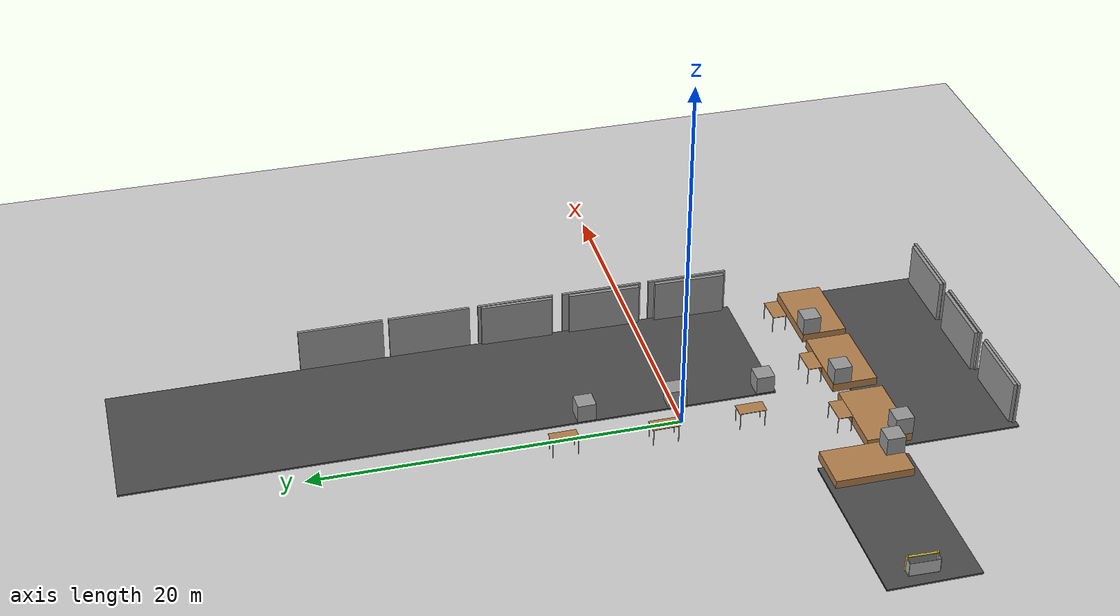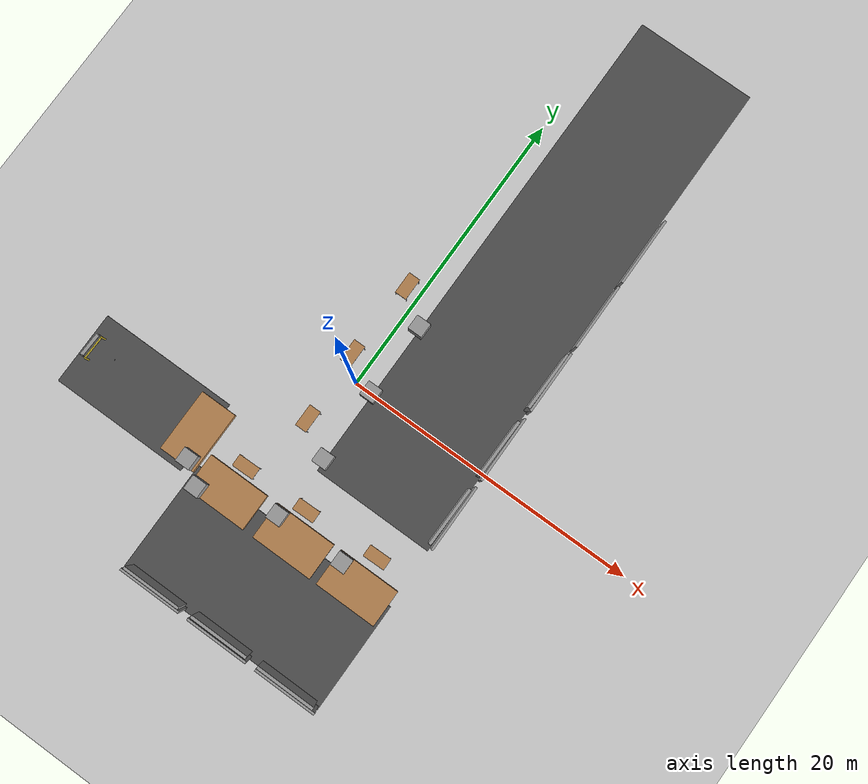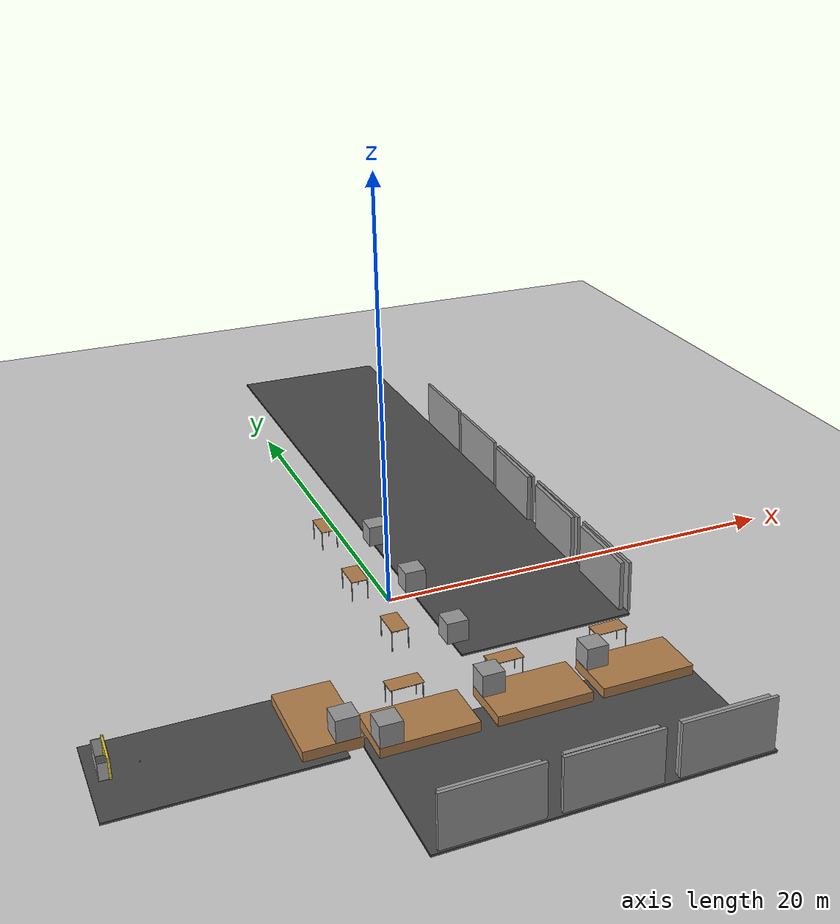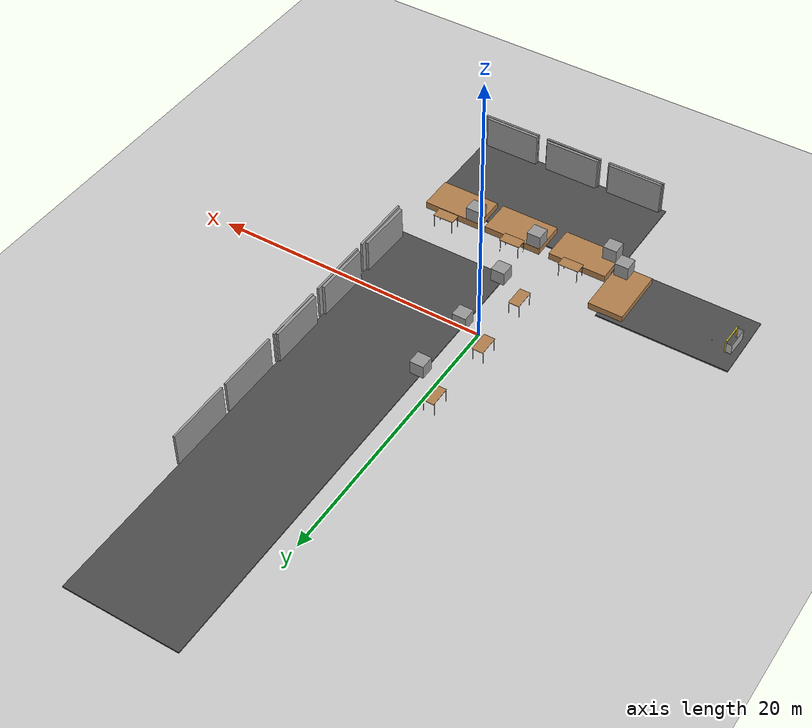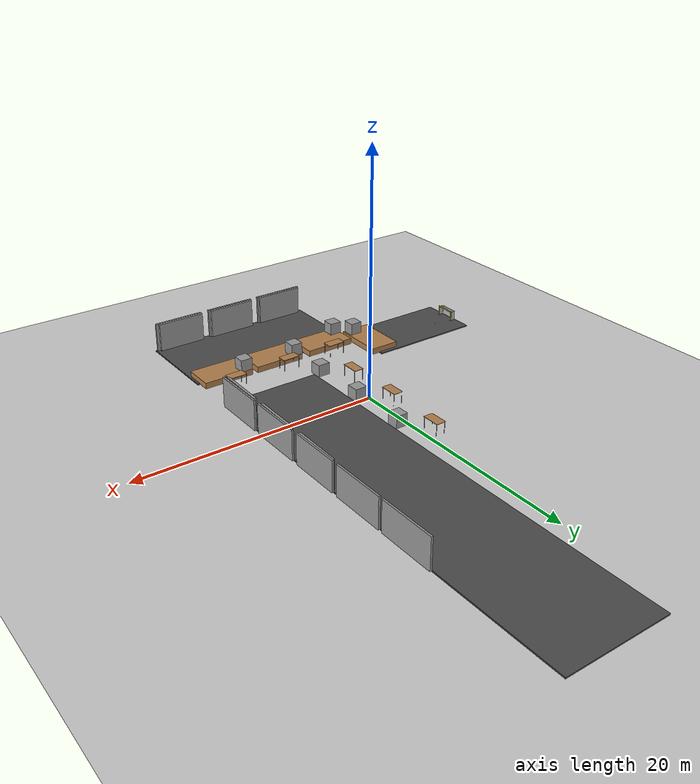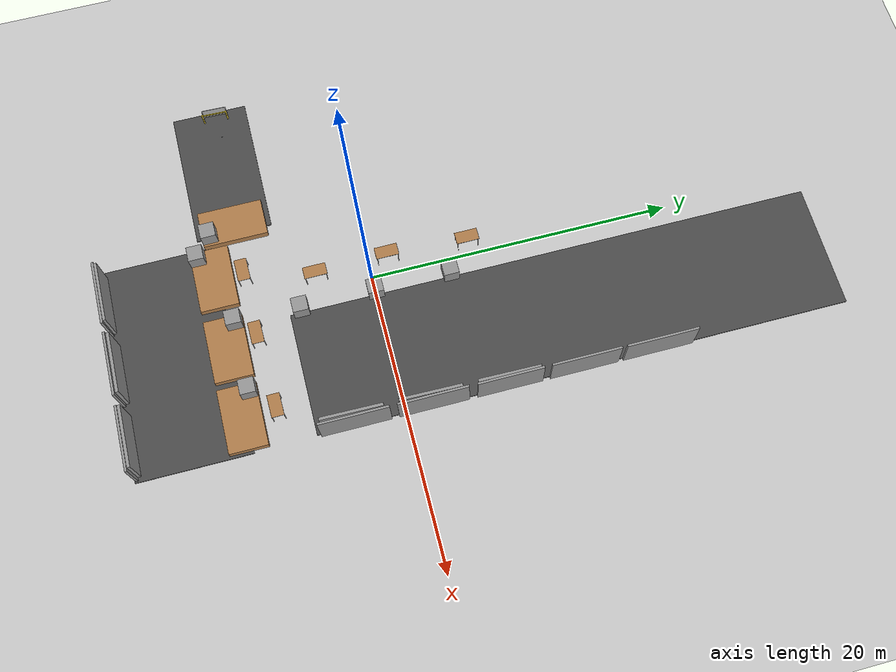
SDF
<sdf version="1.6">
 <world name="default">
  <model name="ground_plane">
   <static>1</static>
   <link name="link">
    <collision name="collision">
     <geometry><plane><normal>0 0 1</normal><size>100 100</size></plane></geometry>
     <surface>
      <contact><collide_bitmask>65535</collide_bitmask></contact>
      <friction><ode><mu>100</mu><mu2>50</mu2></ode></friction>
     </surface>
    </collision>
    <visual name="visual">
     <cast_shadows>0</cast_shadows>
     <geometry><plane><normal>0 0 1</normal><size>100 100</size></plane></geometry>
     <material>
      <script><uri>file://media/materials/scripts/gazebo.material</uri><name>Gazebo/Grey</name></script>
     </material>
    </visual>
   </link>
   <pose>-3.51447 11.9136 0 0 -0 0</pose>
  </model>
  <model name="table_clone">
   <static>1</static>
   <link name="link">
    <collision name="surface">
     <pose>0 0 1 0 -0 0</pose>
     <geometry><box><size>1.5 0.8 0.03</size></box></geometry>
     <surface><friction><ode><mu>0.6</mu><mu2>0.6</mu2></ode></friction></surface>
    </collision>
    <visual name="visual1">
     <pose>0 0 1 0 -0 0</pose>
     <geometry><box><size>1.5 0.8 0.03</size></box></geometry>
     <material>
      <script><uri>file://media/materials/scripts/gazebo.material</uri><name>Gazebo/Wood</name></script>
     </material>
    </visual>
    <collision name="front_left_leg">
     <pose>0.68 0.38 0.5 0 -0 0</pose>
     <geometry><cylinder><radius>0.02</radius><length>1</length></cylinder></geometry>
    </collision>
    <visual name="front_left_leg">
     <pose>0.68 0.38 0.5 0 -0 0</pose>
     <geometry><cylinder><radius>0.02</radius><length>1</length></cylinder></geometry>
     <material>
      <script><uri>file://media/materials/scripts/gazebo.material</uri><name>Gazebo/Grey</name></script>
     </material>
    </visual>
    <collision name="front_right_leg">
     <pose>0.68 -0.38 0.5 0 -0 0</pose>
     <geometry><cylinder><radius>0.02</radius><length>1</length></cylinder></geometry>
    </collision>
    <visual name="front_right_leg">
     <pose>0.68 -0.38 0.5 0 -0 0</pose>
     <geometry><cylinder><radius>0.02</radius><length>1</length></cylinder></geometry>
     <material>
      <script><uri>file://media/materials/scripts/gazebo.material</uri><name>Gazebo/Grey</name></script>
     </material>
    </visual>
    <collision name="back_right_leg">
     <pose>-0.68 -0.38 0.5 0 -0 0</pose>
     <geometry><cylinder><radius>0.02</radius><length>1</length></cylinder></geometry>
    </collision>
    <visual name="back_right_leg">
     <pose>-0.68 -0.38 0.5 0 -0 0</pose>
     <geometry><cylinder><radius>0.02</radius><length>1</length></cylinder></geometry>
     <material>
      <script><uri>file://media/materials/scripts/gazebo.material</uri><name>Gazebo/Grey</name></script>
     </material>
    </visual>
    <collision name="back_left_leg">
     <pose>-0.68 0.38 0.5 0 -0 0</pose>
     <geometry><cylinder><radius>0.02</radius><length>1</length></cylinder></geometry>
    </collision>
    <visual name="back_left_leg">
     <pose>-0.68 0.38 0.5 0 -0 0</pose>
     <geometry><cylinder><radius>0.02</radius><length>1</length></cylinder></geometry>
     <material>
      <script><uri>file://media/materials/scripts/gazebo.material</uri><name>Gazebo/Grey</name></script>
     </material>
    </visual>
   </link>
   <pose>-1.16496 1.3236 0 0 0 -1.56764</pose>
  </model>
  <model name="table_clone_clone">
   <static>1</static>
   <link name="link">
    <collision name="surface">
     <pose>0 0 1 0 -0 0</pose>
     <geometry><box><size>1.5 0.8 0.03</size></box></geometry>
     <surface><friction><ode><mu>0.6</mu><mu2>0.6</mu2></ode></friction></surface>
    </collision>
    <visual name="visual1">
     <pose>0 0 1 0 -0 0</pose>
     <geometry><box><size>1.5 0.8 0.03</size></box></geometry>
     <material>
      <script><uri>file://media/materials/scripts/gazebo.material</uri><name>Gazebo/Wood</name></script>
     </material>
    </visual>
    <collision name="front_left_leg">
     <pose>0.68 0.38 0.5 0 -0 0</pose>
     <geometry><cylinder><radius>0.02</radius><length>1</length></cylinder></geometry>
    </collision>
    <visual name="front_left_leg">
     <pose>0.68 0.38 0.5 0 -0 0</pose>
     <geometry><cylinder><radius>0.02</radius><length>1</length></cylinder></geometry>
     <material>
      <script><uri>file://media/materials/scripts/gazebo.material</uri><name>Gazebo/Grey</name></script>
     </material>
    </visual>
    <collision name="front_right_leg">
     <pose>0.68 -0.38 0.5 0 -0 0</pose>
     <geometry><cylinder><radius>0.02</radius><length>1</length></cylinder></geometry>
    </collision>
    <visual name="front_right_leg">
     <pose>0.68 -0.38 0.5 0 -0 0</pose>
     <geometry><cylinder><radius>0.02</radius><length>1</length></cylinder></geometry>
     <material>
      <script><uri>file://media/materials/scripts/gazebo.material</uri><name>Gazebo/Grey</name></script>
     </material>
    </visual>
    <collision name="back_right_leg">
     <pose>-0.68 -0.38 0.5 0 -0 0</pose>
     <geometry><cylinder><radius>0.02</radius><length>1</length></cylinder></geometry>
    </collision>
    <visual name="back_right_leg">
     <pose>-0.68 -0.38 0.5 0 -0 0</pose>
     <geometry><cylinder><radius>0.02</radius><length>1</length></cylinder></geometry>
     <material>
      <script><uri>file://media/materials/scripts/gazebo.material</uri><name>Gazebo/Grey</name></script>
     </material>
    </visual>
    <collision name="back_left_leg">
     <pose>-0.68 0.38 0.5 0 -0 0</pose>
     <geometry><cylinder><radius>0.02</radius><length>1</length></cylinder></geometry>
    </collision>
    <visual name="back_left_leg">
     <pose>-0.68 0.38 0.5 0 -0 0</pose>
     <geometry><cylinder><radius>0.02</radius><length>1</length></cylinder></geometry>
     <material>
      <script><uri>file://media/materials/scripts/gazebo.material</uri><name>Gazebo/Grey</name></script>
     </material>
    </visual>
   </link>
   <pose>-0.995575 -3.46829 0 0 0 -1.56764</pose>
  </model>
  <model name="table_clone_clone_0">
   <static>1</static>
   <link name="link">
    <collision name="surface">
     <pose>0 0 1 0 -0 0</pose>
     <geometry><box><size>1.5 0.8 0.03</size></box></geometry>
     <surface><friction><ode><mu>0.6</mu><mu2>0.6</mu2></ode></friction></surface>
    </collision>
    <visual name="visual1">
     <pose>0 0 1 0 -0 0</pose>
     <geometry><box><size>1.5 0.8 0.03</size></box></geometry>
     <material>
      <script><uri>file://media/materials/scripts/gazebo.material</uri><name>Gazebo/Wood</name></script>
     </material>
    </visual>
    <collision name="front_left_leg">
     <pose>0.68 0.38 0.5 0 -0 0</pose>
     <geometry><cylinder><radius>0.02</radius><length>1</length></cylinder></geometry>
    </collision>
    <visual name="front_left_leg">
     <pose>0.68 0.38 0.5 0 -0 0</pose>
     <geometry><cylinder><radius>0.02</radius><length>1</length></cylinder></geometry>
     <material>
      <script><uri>file://media/materials/scripts/gazebo.material</uri><name>Gazebo/Grey</name></script>
     </material>
    </visual>
    <collision name="front_right_leg">
     <pose>0.68 -0.38 0.5 0 -0 0</pose>
     <geometry><cylinder><radius>0.02</radius><length>1</length></cylinder></geometry>
    </collision>
    <visual name="front_right_leg">
     <pose>0.68 -0.38 0.5 0 -0 0</pose>
     <geometry><cylinder><radius>0.02</radius><length>1</length></cylinder></geometry>
     <material>
      <script><uri>file://media/materials/scripts/gazebo.material</uri><name>Gazebo/Grey</name></script>
     </material>
    </visual>
    <collision name="back_right_leg">
     <pose>-0.68 -0.38 0.5 0 -0 0</pose>
     <geometry><cylinder><radius>0.02</radius><length>1</length></cylinder></geometry>
    </collision>
    <visual name="back_right_leg">
     <pose>-0.68 -0.38 0.5 0 -0 0</pose>
     <geometry><cylinder><radius>0.02</radius><length>1</length></cylinder></geometry>
     <material>
      <script><uri>file://media/materials/scripts/gazebo.material</uri><name>Gazebo/Grey</name></script>
     </material>
    </visual>
    <collision name="back_left_leg">
     <pose>-0.68 0.38 0.5 0 -0 0</pose>
     <geometry><cylinder><radius>0.02</radius><length>1</length></cylinder></geometry>
    </collision>
    <visual name="back_left_leg">
     <pose>-0.68 0.38 0.5 0 -0 0</pose>
     <geometry><cylinder><radius>0.02</radius><length>1</length></cylinder></geometry>
     <material>
      <script><uri>file://media/materials/scripts/gazebo.material</uri><name>Gazebo/Grey</name></script>
     </material>
    </visual>
   </link>
   <pose>-0.876309 6.63945 0 0 0 -1.56764</pose>
  </model>
  <model name="table_clone_clone_5">
   <static>1</static>
   <link name="link">
    <collision name="surface">
     <pose>0 0 1 0 -0 0</pose>
     <geometry><box><size>1.5 0.8 0.03</size></box></geometry>
     <surface><friction><ode><mu>0.6</mu><mu2>0.6</mu2></ode></friction></surface>
    </collision>
    <visual name="visual1">
     <pose>0 0 1 0 -0 0</pose>
     <geometry><box><size>1.5 0.8 0.03</size></box></geometry>
     <material>
      <script><uri>file://media/materials/scripts/gazebo.material</uri><name>Gazebo/Wood</name></script>
     </material>
    </visual>
    <collision name="front_left_leg">
     <pose>0.68 0.38 0.5 0 -0 0</pose>
     <geometry><cylinder><radius>0.02</radius><length>1</length></cylinder></geometry>
    </collision>
    <visual name="front_left_leg">
     <pose>0.68 0.38 0.5 0 -0 0</pose>
     <geometry><cylinder><radius>0.02</radius><length>1</length></cylinder></geometry>
     <material>
      <script><uri>file://media/materials/scripts/gazebo.material</uri><name>Gazebo/Grey</name></script>
     </material>
    </visual>
    <collision name="front_right_leg">
     <pose>0.68 -0.38 0.5 0 -0 0</pose>
     <geometry><cylinder><radius>0.02</radius><length>1</length></cylinder></geometry>
    </collision>
    <visual name="front_right_leg">
     <pose>0.68 -0.38 0.5 0 -0 0</pose>
     <geometry><cylinder><radius>0.02</radius><length>1</length></cylinder></geometry>
     <material>
      <script><uri>file://media/materials/scripts/gazebo.material</uri><name>Gazebo/Grey</name></script>
     </material>
    </visual>
    <collision name="back_right_leg">
     <pose>-0.68 -0.38 0.5 0 -0 0</pose>
     <geometry><cylinder><radius>0.02</radius><length>1</length></cylinder></geometry>
    </collision>
    <visual name="back_right_leg">
     <pose>-0.68 -0.38 0.5 0 -0 0</pose>
     <geometry><cylinder><radius>0.02</radius><length>1</length></cylinder></geometry>
     <material>
      <script><uri>file://media/materials/scripts/gazebo.material</uri><name>Gazebo/Grey</name></script>
     </material>
    </visual>
    <collision name="back_left_leg">
     <pose>-0.68 0.38 0.5 0 -0 0</pose>
     <geometry><cylinder><radius>0.02</radius><length>1</length></cylinder></geometry>
    </collision>
    <visual name="back_left_leg">
     <pose>-0.68 0.38 0.5 0 -0 0</pose>
     <geometry><cylinder><radius>0.02</radius><length>1</length></cylinder></geometry>
     <material>
      <script><uri>file://media/materials/scripts/gazebo.material</uri><name>Gazebo/Grey</name></script>
     </material>
    </visual>
   </link>
   <pose>7.26268 -7.72077 0 0 -0 0.016845</pose>
  </model>
  <model name="table_clone_clone_5_clone">
   <static>1</static>
   <link name="link">
    <collision name="surface">
     <pose>0 0 1 0 -0 0</pose>
     <geometry><box><size>1.5 0.8 0.03</size></box></geometry>
     <surface><friction><ode><mu>0.6</mu><mu2>0.6</mu2></ode></friction></surface>
    </collision>
    <visual name="visual1">
     <pose>0 0 1 0 -0 0</pose>
     <geometry><box><size>1.5 0.8 0.03</size></box></geometry>
     <material>
      <script><uri>file://media/materials/scripts/gazebo.material</uri><name>Gazebo/Wood</name></script>
     </material>
    </visual>
    <collision name="front_left_leg">
     <pose>0.68 0.38 0.5 0 -0 0</pose>
     <geometry><cylinder><radius>0.02</radius><length>1</length></cylinder></geometry>
    </collision>
    <visual name="front_left_leg">
     <pose>0.68 0.38 0.5 0 -0 0</pose>
     <geometry><cylinder><radius>0.02</radius><length>1</length></cylinder></geometry>
     <material>
      <script><uri>file://media/materials/scripts/gazebo.material</uri><name>Gazebo/Grey</name></script>
     </material>
    </visual>
    <collision name="front_right_leg">
     <pose>0.68 -0.38 0.5 0 -0 0</pose>
     <geometry><cylinder><radius>0.02</radius><length>1</length></cylinder></geometry>
    </collision>
    <visual name="front_right_leg">
     <pose>0.68 -0.38 0.5 0 -0 0</pose>
     <geometry><cylinder><radius>0.02</radius><length>1</length></cylinder></geometry>
     <material>
      <script><uri>file://media/materials/scripts/gazebo.material</uri><name>Gazebo/Grey</name></script>
     </material>
    </visual>
    <collision name="back_right_leg">
     <pose>-0.68 -0.38 0.5 0 -0 0</pose>
     <geometry><cylinder><radius>0.02</radius><length>1</length></cylinder></geometry>
    </collision>
    <visual name="back_right_leg">
     <pose>-0.68 -0.38 0.5 0 -0 0</pose>
     <geometry><cylinder><radius>0.02</radius><length>1</length></cylinder></geometry>
     <material>
      <script><uri>file://media/materials/scripts/gazebo.material</uri><name>Gazebo/Grey</name></script>
     </material>
    </visual>
    <collision name="back_left_leg">
     <pose>-0.68 0.38 0.5 0 -0 0</pose>
     <geometry><cylinder><radius>0.02</radius><length>1</length></cylinder></geometry>
    </collision>
    <visual name="back_left_leg">
     <pose>-0.68 0.38 0.5 0 -0 0</pose>
     <geometry><cylinder><radius>0.02</radius><length>1</length></cylinder></geometry>
     <material>
      <script><uri>file://media/materials/scripts/gazebo.material</uri><name>Gazebo/Grey</name></script>
     </material>
    </visual>
   </link>
   <pose>2.20011 -7.95706 0 0 -0 0.016845</pose>
  </model>
  <model name="table_clone_clone_5_clone_0">
   <static>1</static>
   <link name="link">
    <collision name="surface">
     <pose>0 0 1 0 -0 0</pose>
     <geometry><box><size>1.5 0.8 0.03</size></box></geometry>
     <surface><friction><ode><mu>0.6</mu><mu2>0.6</mu2></ode></friction></surface>
    </collision>
    <visual name="visual1">
     <pose>0 0 1 0 -0 0</pose>
     <geometry><box><size>1.5 0.8 0.03</size></box></geometry>
     <material>
      <script><uri>file://media/materials/scripts/gazebo.material</uri><name>Gazebo/Wood</name></script>
     </material>
    </visual>
    <collision name="front_left_leg">
     <pose>0.68 0.38 0.5 0 -0 0</pose>
     <geometry><cylinder><radius>0.02</radius><length>1</length></cylinder></geometry>
    </collision>
    <visual name="front_left_leg">
     <pose>0.68 0.38 0.5 0 -0 0</pose>
     <geometry><cylinder><radius>0.02</radius><length>1</length></cylinder></geometry>
     <material>
      <script><uri>file://media/materials/scripts/gazebo.material</uri><name>Gazebo/Grey</name></script>
     </material>
    </visual>
    <collision name="front_right_leg">
     <pose>0.68 -0.38 0.5 0 -0 0</pose>
     <geometry><cylinder><radius>0.02</radius><length>1</length></cylinder></geometry>
    </collision>
    <visual name="front_right_leg">
     <pose>0.68 -0.38 0.5 0 -0 0</pose>
     <geometry><cylinder><radius>0.02</radius><length>1</length></cylinder></geometry>
     <material>
      <script><uri>file://media/materials/scripts/gazebo.material</uri><name>Gazebo/Grey</name></script>
     </material>
    </visual>
    <collision name="back_right_leg">
     <pose>-0.68 -0.38 0.5 0 -0 0</pose>
     <geometry><cylinder><radius>0.02</radius><length>1</length></cylinder></geometry>
    </collision>
    <visual name="back_right_leg">
     <pose>-0.68 -0.38 0.5 0 -0 0</pose>
     <geometry><cylinder><radius>0.02</radius><length>1</length></cylinder></geometry>
     <material>
      <script><uri>file://media/materials/scripts/gazebo.material</uri><name>Gazebo/Grey</name></script>
     </material>
    </visual>
    <collision name="back_left_leg">
     <pose>-0.68 0.38 0.5 0 -0 0</pose>
     <geometry><cylinder><radius>0.02</radius><length>1</length></cylinder></geometry>
    </collision>
    <visual name="back_left_leg">
     <pose>-0.68 0.38 0.5 0 -0 0</pose>
     <geometry><cylinder><radius>0.02</radius><length>1</length></cylinder></geometry>
     <material>
      <script><uri>file://media/materials/scripts/gazebo.material</uri><name>Gazebo/Grey</name></script>
     </material>
    </visual>
   </link>
   <pose>-2.27876 -7.99089 0 0 -0 0.016845</pose>
  </model>
  <model name="L_wall_wood">
   <pose>1.10853 -8.53397 0 0 -0 0</pose>
   <link name="Wall_14">
    <collision name="Wall_14_Collision">
     <geometry><box><size>4.25 2.5 0.5</size></box></geometry>
     <pose>0 0 0.25 0 -0 0</pose>
    </collision>
    <visual name="Wall_14_Visual">
     <pose>0 0 0.25 0 -0 0</pose>
     <geometry><box><size>4.25 2.5 0.5</size></box></geometry>
     <material>
      <script><uri>file://media/materials/scripts/gazebo.material</uri><name>Gazebo/Wood</name></script>
      <ambient>1 1 1 1</ambient>
     </material>
     <meta><layer>0</layer></meta>
    </visual>
    <pose>6.238 -1.377 0 0 -0 0</pose>
   </link>
   <link name="Wall_16">
    <collision name="Wall_16_Collision">
     <geometry><box><size>4.25 2.5 0.5</size></box></geometry>
     <pose>0 0 0.25 0 -0 0</pose>
    </collision>
    <visual name="Wall_16_Visual">
     <pose>0 0 0.25 0 -0 0</pose>
     <geometry><box><size>4.25 2.5 0.5</size></box></geometry>
     <material>
      <script><uri>file://media/materials/scripts/gazebo.material</uri><name>Gazebo/Wood</name></script>
      <ambient>1 1 1 1</ambient>
     </material>
     <meta><layer>0</layer></meta>
    </visual>
    <pose>1.505 -1.377 0 0 -0 3.14159</pose>
   </link>
   <link name="Wall_18">
    <collision name="Wall_18_Collision">
     <geometry><box><size>4.25 2.5 0.5</size></box></geometry>
     <pose>0 0 0.25 0 -0 0</pose>
    </collision>
    <visual name="Wall_18_Visual">
     <pose>0 0 0.25 0 -0 0</pose>
     <geometry><box><size>4.25 2.5 0.5</size></box></geometry>
     <material>
      <script><uri>file://media/materials/scripts/gazebo.material</uri><name>Gazebo/Wood</name></script>
      <ambient>1 1 1 1</ambient>
     </material>
     <meta><layer>0</layer></meta>
    </visual>
    <pose>-3.485 -1.377 0 0 -0 3.14159</pose>
   </link>
   <link name="Wall_20">
    <collision name="Wall_20_Collision">
     <geometry><box><size>4.25 2.5 0.5</size></box></geometry>
     <pose>0 0 0.25 0 -0 0</pose>
    </collision>
    <visual name="Wall_20_Visual">
     <pose>0 0 0.25 0 -0 0</pose>
     <geometry><box><size>4.25 2.5 0.5</size></box></geometry>
     <material>
      <script><uri>file://media/materials/scripts/gazebo.material</uri><name>Gazebo/Wood</name></script>
      <ambient>1 1 1 1</ambient>
     </material>
     <meta><layer>0</layer></meta>
    </visual>
    <pose>-7.113 0.502 0 0 -0 1.5708</pose>
   </link>
   <static>1</static>
  </model>
  <model name="screen_1">
   <pose>9.6 6.6721 0 0 -0 0</pose>
   <link name="Wall_15">
    <collision name="Wall_15_Collision">
     <geometry><box><size>4.65 0.15 2.5</size></box></geometry>
     <pose>0 0 1.25 0 -0 0</pose>
    </collision>
    <visual name="Wall_15_Visual">
     <pose>0 0 1.25 0 -0 0</pose>
     <geometry><box><size>4.65 0.15 2.5</size></box></geometry>
     <material>
      <script><uri>file://media/materials/scripts/gazebo.material</uri><name>Gazebo/Grey</name></script>
      <ambient>1 1 1 1</ambient>
     </material>
     <meta><layer>0</layer></meta>
    </visual>
    <pose>0 9.7845 0 0 -0 -1.5708</pose>
   </link>
   <link name="Wall_17">
    <collision name="Wall_17_Collision">
     <geometry><box><size>4.5 0.15 2.5</size></box></geometry>
     <pose>0 0 1.25 0 -0 0</pose>
    </collision>
    <visual name="Wall_17_Visual">
     <pose>0 0 1.25 0 -0 0</pose>
     <geometry><box><size>4.5 0.15 2.5</size></box></geometry>
     <material>
      <script><uri>file://media/materials/scripts/gazebo.material</uri><name>Gazebo/Grey</name></script>
      <ambient>1 1 1 1</ambient>
     </material>
     <meta><layer>0</layer></meta>
    </visual>
    <pose>0 4.8855 0 0 -0 -1.5708</pose>
   </link>
   <link name="Wall_19">
    <collision name="Wall_19_Collision">
     <geometry><box><size>4.25 0.15 2.5</size></box></geometry>
     <pose>0 0 1.25 0 -0 0</pose>
    </collision>
    <visual name="Wall_19_Visual">
     <pose>0 0 1.25 0 -0 0</pose>
     <geometry><box><size>4.25 0.15 2.5</size></box></geometry>
     <material>
      <script><uri>file://media/materials/scripts/gazebo.material</uri><name>Gazebo/Grey</name></script>
      <ambient>1 1 1 1</ambient>
     </material>
     <meta><layer>0</layer></meta>
    </visual>
    <pose>0 0.028499 0 0 -0 -1.5708</pose>
   </link>
   <link name="Wall_21">
    <collision name="Wall_21_Collision">
     <geometry><box><size>4.5 0.15 2.5</size></box></geometry>
     <pose>0 0 1.25 0 -0 0</pose>
    </collision>
    <visual name="Wall_21_Visual">
     <pose>0 0 1.25 0 -0 0</pose>
     <geometry><box><size>4.5 0.15 2.5</size></box></geometry>
     <material>
      <script><uri>file://media/materials/scripts/gazebo.material</uri><name>Gazebo/Grey</name></script>
      <ambient>1 1 1 1</ambient>
     </material>
     <meta><layer>0</layer></meta>
    </visual>
    <pose>0 -4.8845 0 0 -0 1.5708</pose>
   </link>
   <link name="Wall_23">
    <collision name="Wall_23_Collision">
     <geometry><box><size>4.5 0.15 2.5</size></box></geometry>
     <pose>0 0 1.25 0 -0 0</pose>
    </collision>
    <visual name="Wall_23_Visual">
     <pose>0 0 1.25 0 -0 0</pose>
     <geometry><box><size>4.5 0.15 2.5</size></box></geometry>
     <material>
      <script><uri>file://media/materials/scripts/gazebo.material</uri><name>Gazebo/Grey</name></script>
      <ambient>1 1 1 1</ambient>
     </material>
     <meta><layer>0</layer></meta>
    </visual>
    <pose>0 -9.8595 0 0 -0 -1.5708</pose>
   </link>
   <static>1</static>
  </model>
  <model name="cut_wall">
   <pose>2.54547 -16.9287 0 0 -0 0</pose>
   <link name="Wall_25">
    <collision name="Wall_25_Collision">
     <geometry><box><size>4.25 0.15 2.5</size></box></geometry>
     <pose>0 0 1.25 0 -0 0</pose>
    </collision>
    <visual name="Wall_25_Visual">
     <pose>0 0 1.25 0 -0 0</pose>
     <geometry><box><size>4.25 0.15 2.5</size></box></geometry>
     <material>
      <script><uri>file://media/materials/scripts/gazebo.material</uri><name>Gazebo/Grey</name></script>
      <ambient>1 1 1 1</ambient>
     </material>
     <meta><layer>0</layer></meta>
    </visual>
    <pose>-4.893 0 0 0 -0 0</pose>
   </link>
   <link name="Wall_27">
    <collision name="Wall_27_Collision">
     <geometry><box><size>4.25 0.15 2.5</size></box></geometry>
     <pose>0 0 1.25 0 -0 0</pose>
    </collision>
    <visual name="Wall_27_Visual">
     <pose>0 0 1.25 0 -0 0</pose>
     <geometry><box><size>4.25 0.15 2.5</size></box></geometry>
     <material>
      <script><uri>file://media/materials/scripts/gazebo.material</uri><name>Gazebo/Grey</name></script>
      <ambient>1 1 1 1</ambient>
     </material>
     <meta><layer>0</layer></meta>
    </visual>
    <pose>-0.022 0 0 0 -0 3.14159</pose>
   </link>
   <link name="Wall_29">
    <collision name="Wall_29_Collision">
     <geometry><box><size>4.25 0.15 2.5</size></box></geometry>
     <pose>0 0 1.25 0 -0 0</pose>
    </collision>
    <visual name="Wall_29_Visual">
     <pose>0 0 1.25 0 -0 0</pose>
     <geometry><box><size>4.25 0.15 2.5</size></box></geometry>
     <material>
      <script><uri>file://media/materials/scripts/gazebo.material</uri><name>Gazebo/Grey</name></script>
      <ambient>1 1 1 1</ambient>
     </material>
     <meta><layer>0</layer></meta>
    </visual>
    <pose>4.893 0 0 0 -0 0</pose>
   </link>
   <static>1</static>
  </model>
  <model name="asphalt_plane">
   <static>1</static>
   <link name="link">
    <collision name="collision"><geometry><box><size>8.27888 35.0254 0.1</size></box></geometry></collision>
    <visual name="visual">
     <cast_shadows>0</cast_shadows>
     <geometry><box><size>8.27888 35.0254 0.1</size></box></geometry>
     <material>
      <script>
       <uri>model://asphalt_plane/materials/scripts</uri>
       <uri>model://asphalt_plane/materials/textures</uri>
       <name>vrc/asphalt</name>
      </script>
     </material>
    </visual>
   </link>
   <pose>5.3801 11.8228 0 0 -0 0</pose>
  </model>
  <model name="asphalt_plane_0">
   <static>1</static>
   <link name="link">
    <collision name="collision"><geometry><box><size>14.4434 7.42386 0.1</size></box></geometry></collision>
    <visual name="visual">
     <cast_shadows>0</cast_shadows>
     <geometry><box><size>14.4434 7.42386 0.1</size></box></geometry>
     <material>
      <script>
       <uri>model://asphalt_plane/materials/scripts</uri>
       <uri>model://asphalt_plane/materials/textures</uri>
       <name>vrc/asphalt</name>
      </script>
     </material>
    </visual>
   </link>
   <pose>2.42987 -13.3732 0 0 -0 0</pose>
  </model>
  <model name="asphalt_plane_1">
   <static>1</static>
   <link name="link">
    <collision name="collision"><geometry><box><size>9.45285 4.97822 0.1</size></box></geometry></collision>
    <visual name="visual">
     <cast_shadows>0</cast_shadows>
     <geometry><box><size>9.45285 4.97822 0.1</size></box></geometry>
     <material>
      <script>
       <uri>model://asphalt_plane/materials/scripts</uri>
       <uri>model://asphalt_plane/materials/textures</uri>
       <name>vrc/asphalt</name>
      </script>
     </material>
    </visual>
   </link>
   <pose>-10.2187 -8.08202 0 0 -0 0</pose>
  </model>
  <model name="grey_wall_clone_2">
   <static>1</static>
   <link name="link">
    <pose>0 0 1.4 0 -0 0</pose>
    <collision name="collision"><geometry><box><size>4 0.2 2.4</size></box></geometry></collision>
    <visual name="visual">
     <cast_shadows>0</cast_shadows>
     <geometry><box><size>4 0.2 2.4</size></box></geometry>
     <material>
      <script>
       <uri>model://grey_wall/materials/scripts</uri>
       <uri>model://grey_wall/materials/textures</uri>
       <name>vrc/grey_wall</name>
      </script>
     </material>
    </visual>
   </link>
   <pose>9.43592 6.66944 -0.13155 0 0 -1.58718</pose>
  </model>
  <model name="grey_wall_clone_3">
   <static>1</static>
   <link name="link">
    <pose>0 0 1.4 0 -0 0</pose>
    <collision name="collision"><geometry><box><size>4 0.2 2.4</size></box></geometry></collision>
    <visual name="visual">
     <cast_shadows>0</cast_shadows>
     <geometry><box><size>4 0.2 2.4</size></box></geometry>
     <material>
      <script>
       <uri>model://grey_wall/materials/scripts</uri>
       <uri>model://grey_wall/materials/textures</uri>
       <name>vrc/grey_wall</name>
      </script>
     </material>
    </visual>
   </link>
   <pose>9.38037 1.69316 -0.13155 0 0 -1.58718</pose>
  </model>
  <model name="grey_wall_clone_4">
   <static>1</static>
   <link name="link">
    <pose>0 0 1.4 0 -0 0</pose>
    <collision name="collision"><geometry><box><size>4 0.2 2.4</size></box></geometry></collision>
    <visual name="visual">
     <cast_shadows>0</cast_shadows>
     <geometry><box><size>4 0.2 2.4</size></box></geometry>
     <material>
      <script>
       <uri>model://grey_wall/materials/scripts</uri>
       <uri>model://grey_wall/materials/textures</uri>
       <name>vrc/grey_wall</name>
      </script>
     </material>
    </visual>
   </link>
   <pose>9.33451 -3.2481 -0.13155 0 0 -1.58718</pose>
  </model>
  <model name="grey_wall_0">
   <static>1</static>
   <link name="link">
    <pose>0 0 1.4 0 -0 0</pose>
    <collision name="collision"><geometry><box><size>4 0.2 2.4</size></box></geometry></collision>
    <visual name="visual">
     <cast_shadows>0</cast_shadows>
     <geometry><box><size>4 0.2 2.4</size></box></geometry>
     <material>
      <script>
       <uri>model://grey_wall/materials/scripts</uri>
       <uri>model://grey_wall/materials/textures</uri>
       <name>vrc/grey_wall</name>
      </script>
     </material>
    </visual>
   </link>
   <pose>7.32601 -16.7452 -0.12326 0 -0 0</pose>
  </model>
  <model name="grey_wall_0_clone">
   <static>1</static>
   <link name="link">
    <pose>0 0 1.4 0 -0 0</pose>
    <collision name="collision"><geometry><box><size>4 0.2 2.4</size></box></geometry></collision>
    <visual name="visual">
     <cast_shadows>0</cast_shadows>
     <geometry><box><size>4 0.2 2.4</size></box></geometry>
     <material>
      <script>
       <uri>model://grey_wall/materials/scripts</uri>
       <uri>model://grey_wall/materials/textures</uri>
       <name>vrc/grey_wall</name>
      </script>
     </material>
    </visual>
   </link>
   <pose>2.49391 -16.6997 -0.12326 0 -0 0</pose>
  </model>
  <model name="grey_wall_0_clone_0">
   <static>1</static>
   <link name="link">
    <pose>0 0 1.4 0 -0 0</pose>
    <collision name="collision"><geometry><box><size>4 0.2 2.4</size></box></geometry></collision>
    <visual name="visual">
     <cast_shadows>0</cast_shadows>
     <geometry><box><size>4 0.2 2.4</size></box></geometry>
     <material>
      <script>
       <uri>model://grey_wall/materials/scripts</uri>
       <uri>model://grey_wall/materials/textures</uri>
       <name>vrc/grey_wall</name>
      </script>
     </material>
    </visual>
   </link>
   <pose>-2.37767 -16.7729 -0.12326 0 -0 0</pose>
  </model>
  <model name="unit_box_5">
   <pose>1.20147 4.98469 0.999995 1e-05 -0 2.3e-05</pose>
   <link name="link">
    <inertial>
     <mass>1</mass>
     <inertia>
      <ixx>0.166667</ixx>
      <ixy>0</ixy>
      <ixz>0</ixz>
      <iyy>0.166667</iyy>
      <iyz>0</iyz>
      <izz>0.166667</izz>
     </inertia>
    </inertial>
    <collision name="collision"><geometry><box><size>1 1 1</size></box></geometry></collision>
    <visual name="visual">
     <geometry><box><size>1 1 1</size></box></geometry>
     <material>
      <script><name>Gazebo/Grey</name><uri>file://media/materials/scripts/gazebo.material</uri></script>
     </material>
    </visual>
   </link>
  </model>
  <model name="unit_box_6">
   <pose>1.17768 0.02478 0.999996 0 9e-06 2.4e-05</pose>
   <link name="link">
    <inertial>
     <mass>1</mass>
     <inertia>
      <ixx>0.166667</ixx>
      <ixy>0</ixy>
      <ixz>0</ixz>
      <iyy>0.166667</iyy>
      <iyz>0</iyz>
      <izz>0.166667</izz>
     </inertia>
    </inertial>
    <collision name="collision"><geometry><box><size>1 1 1</size></box></geometry></collision>
    <visual name="visual">
     <geometry><box><size>1 1 1</size></box></geometry>
     <material>
      <script><name>Gazebo/Grey</name><uri>file://media/materials/scripts/gazebo.material</uri></script>
     </material>
    </visual>
   </link>
  </model>
  <model name="unit_box_7">
   <pose>1.21385 -4.87738 0.999995 1e-05 -0 2.1e-05</pose>
   <link name="link">
    <inertial>
     <mass>1</mass>
     <inertia>
      <ixx>0.166667</ixx>
      <ixy>0</ixy>
      <ixz>0</ixz>
      <iyy>0.166667</iyy>
      <iyz>0</iyz>
      <izz>0.166667</izz>
     </inertia>
    </inertial>
    <collision name="collision"><geometry><box><size>1 1 1</size></box></geometry></collision>
    <visual name="visual">
     <geometry><box><size>1 1 1</size></box></geometry>
     <material>
      <script><name>Gazebo/Grey</name><uri>file://media/materials/scripts/gazebo.material</uri></script>
     </material>
    </visual>
   </link>
  </model>
  <model name="unit_box_8">
   <pose>5.73587 -9.15813 1 0 0 -0.000764</pose>
   <link name="link">
    <inertial>
     <mass>1</mass>
     <inertia>
      <ixx>0.166667</ixx>
      <ixy>0</ixy>
      <ixz>0</ixz>
      <iyy>0.166667</iyy>
      <iyz>0</iyz>
      <izz>0.166667</izz>
     </inertia>
    </inertial>
    <collision name="collision"><geometry><box><size>1 1 1</size></box></geometry></collision>
    <visual name="visual">
     <geometry><box><size>1 1 1</size></box></geometry>
     <material>
      <script><name>Gazebo/Grey</name><uri>file://media/materials/scripts/gazebo.material</uri></script>
     </material>
    </visual>
   </link>
  </model>
  <model name="unit_box_9">
   <pose>0.974467 -9.1704 0.999995 0 -1e-05 4.7e-05</pose>
   <link name="link">
    <inertial>
     <mass>1</mass>
     <inertia>
      <ixx>0.166667</ixx>
      <ixy>0</ixy>
      <ixz>0</ixz>
      <iyy>0.166667</iyy>
      <iyz>0</iyz>
      <izz>0.166667</izz>
     </inertia>
    </inertial>
    <collision name="collision"><geometry><box><size>1 1 1</size></box></geometry></collision>
    <visual name="visual">
     <geometry><box><size>1 1 1</size></box></geometry>
     <material>
      <script><name>Gazebo/Grey</name><uri>file://media/materials/scripts/gazebo.material</uri></script>
     </material>
    </visual>
   </link>
  </model>
  <model name="unit_box_10">
   <pose>-3.98816 -10.677 0.999998 -4e-06 -0 1.8e-05</pose>
   <link name="link">
    <inertial>
     <mass>1</mass>
     <inertia>
      <ixx>0.166667</ixx>
      <ixy>0</ixy>
      <ixz>0</ixz>
      <iyy>0.166667</iyy>
      <iyz>0</iyz>
      <izz>0.166667</izz>
     </inertia>
    </inertial>
    <collision name="collision"><geometry><box><size>1 1 1</size></box></geometry></collision>
    <visual name="visual">
     <geometry><box><size>1 1 1</size></box></geometry>
     <material>
      <script><name>Gazebo/Grey</name><uri>file://media/materials/scripts/gazebo.material</uri></script>
     </material>
    </visual>
   </link>
  </model>
  <model name="unit_box_11">
   <pose>-5.39995 -9.64011 0.999998 -5e-06 -0 0.005769</pose>
   <link name="link">
    <inertial>
     <mass>1</mass>
     <inertia>
      <ixx>0.166667</ixx>
      <ixy>0</ixy>
      <ixz>0</ixz>
      <iyy>0.166667</iyy>
      <iyz>0</iyz>
      <izz>0.166667</izz>
     </inertia>
    </inertial>
    <collision name="collision"><geometry><box><size>1 1 1</size></box></geometry></collision>
    <visual name="visual">
     <geometry><box><size>1 1 1</size></box></geometry>
     <material>
      <script><name>Gazebo/Grey</name><uri>file://media/materials/scripts/gazebo.material</uri></script>
     </material>
    </visual>
   </link>
  </model>
  <model name="unit_sphere">
   <pose>-12.9011 -7.52801 0.084839 0 -0 0</pose>
   <link name="link">
    <inertial>
     <mass>1</mass>
     <inertia><ixx>0.1</ixx><ixy>0</ixy><ixz>0</ixz><iyy>0.1</iyy><iyz>0</iyz><izz>0.1</izz></inertia>
    </inertial>
    <collision name="collision"><geometry><sphere><radius>0.034839</radius></sphere></geometry></collision>
    <visual name="visual">
     <geometry><sphere><radius>0.034839</radius></sphere></geometry>
     <material>
      <script><name>Gazebo/Grey</name><uri>file://media/materials/scripts/gazebo.material</uri></script>
     </material>
    </visual>
   </link>
  </model>
  <model name="RoboCup 2014 SPL Goal">
   <static>1</static>
   <link name="left_post">
    <pose>0 0.8 0.45 0 -0 0</pose>
    <collision name="collision">
     <geometry><cylinder><radius>0.05</radius><length>0.9</length></cylinder></geometry>
    </collision>
    <visual name="visual">
     <geometry><cylinder><radius>0.05</radius><length>0.9</length></cylinder></geometry>
     <material>
      <script><uri>file://media/materials/scripts/gazebo.material</uri><name>Gazebo/ZincYellow</name></script>
     </material>
    </visual>
   </link>
   <link name="left_support_horiz_lower">
    <pose>0.24 0.8 0.01 0 -0 0</pose>
    <collision name="collision"><geometry><box><size>0.38 0.02 0.02</size></box></geometry></collision>
    <visual name="visual">
     <geometry><box><size>0.38 0.02 0.02</size></box></geometry>
     <material>
      <script><uri>file://media/materials/scripts/gazebo.material</uri><name>Gazebo/White</name></script>
     </material>
    </visual>
   </link>
   <link name="left_support_horiz_upper">
    <pose>0.24 0.8 0.79 0 -0 0</pose>
    <collision name="collision"><geometry><box><size>0.38 0.02 0.02</size></box></geometry></collision>
    <visual name="visual">
     <geometry><box><size>0.38 0.02 0.02</size></box></geometry>
     <material>
      <script><uri>file://media/materials/scripts/gazebo.material</uri><name>Gazebo/White</name></script>
     </material>
    </visual>
   </link>
   <link name="left_support_vertical">
    <pose>0.44 0.8 0.4 3.14159 1.57079 3.14159</pose>
    <collision name="collision"><geometry><box><size>0.8 0.02 0.02</size></box></geometry></collision>
    <visual name="visual">
     <geometry><box><size>0.8 0.02 0.02</size></box></geometry>
     <material>
      <script><uri>file://media/materials/scripts/gazebo.material</uri><name>Gazebo/White</name></script>
     </material>
    </visual>
   </link>
   <link name="right_support_horiz_lower">
    <pose>0.24 -0.8 0.01 0 -0 0</pose>
    <collision name="collision"><geometry><box><size>0.38 0.02 0.02</size></box></geometry></collision>
    <visual name="visual">
     <geometry><box><size>0.38 0.02 0.02</size></box></geometry>
     <material>
      <script><uri>file://media/materials/scripts/gazebo.material</uri><name>Gazebo/White</name></script>
     </material>
    </visual>
   </link>
   <link name="right_support_horiz_upper">
    <pose>0.24 -0.8 0.79 0 -0 0</pose>
    <collision name="collision"><geometry><box><size>0.38 0.02 0.02</size></box></geometry></collision>
    <visual name="visual">
     <geometry><box><size>0.38 0.02 0.02</size></box></geometry>
     <material>
      <script><uri>file://media/materials/scripts/gazebo.material</uri><name>Gazebo/White</name></script>
     </material>
    </visual>
   </link>
   <link name="right_support_vertical">
    <pose>0.44 -0.8 0.4 3.14159 1.57079 3.14159</pose>
    <collision name="collision"><geometry><box><size>0.8 0.02 0.02</size></box></geometry></collision>
    <visual name="visual">
     <geometry><box><size>0.8 0.02 0.02</size></box></geometry>
     <material>
      <script><uri>file://media/materials/scripts/gazebo.material</uri><name>Gazebo/White</name></script>
     </material>
    </visual>
   </link>
   <link name="center_support_horiz_lower">
    <pose>0.44 0 0.01 3.14159 1.57079 3.14159</pose>
    <collision name="collision"><geometry><box><size>0.02 1.58 0.02</size></box></geometry></collision>
    <visual name="visual">
     <geometry><box><size>0.02 1.58 0.02</size></box></geometry>
     <material>
      <script><uri>file://media/materials/scripts/gazebo.material</uri><name>Gazebo/White</name></script>
     </material>
    </visual>
   </link>
   <link name="center_support_horiz_upper">
    <pose>0.44 0 0.79 3.14159 1.57079 3.14159</pose>
    <collision name="collision"><geometry><box><size>0.02 1.58 0.02</size></box></geometry></collision>
    <visual name="visual">
     <geometry><box><size>0.02 1.58 0.02</size></box></geometry>
     <material>
      <script><uri>file://media/materials/scripts/gazebo.material</uri><name>Gazebo/White</name></script>
     </material>
    </visual>
   </link>
   <link name="right_post">
    <pose>0 -0.8 0.45 0 -0 0</pose>
    <collision name="collision">
     <geometry><cylinder><radius>0.05</radius><length>0.9</length></cylinder></geometry>
    </collision>
    <visual name="visual">
     <geometry><cylinder><radius>0.05</radius><length>0.9</length></cylinder></geometry>
     <material>
      <script><uri>file://media/materials/scripts/gazebo.material</uri><name>Gazebo/ZincYellow</name></script>
     </material>
    </visual>
   </link>
   <link name="crossbar">
    <pose>0 0 0.85 1.57 1.57 0</pose>
    <collision name="collision">
     <geometry><cylinder><radius>0.05</radius><length>1.5</length></cylinder></geometry>
    </collision>
    <visual name="visual">
     <geometry><cylinder><radius>0.05</radius><length>1.5</length></cylinder></geometry>
     <material>
      <script><uri>file://media/materials/scripts/gazebo.material</uri><name>Gazebo/ZincYellow</name></script>
     </material>
    </visual>
   </link>
   <link name="center_net">
    <pose>0.44 0 0.4 0 -0 0</pose>
    <collision name="collision"><geometry><box><size>0.01 1.6 0.8</size></box></geometry></collision>
    <visual name="visual">
     <geometry><box><size>0.01 1.6 0.8</size></box></geometry>
     <material>
      <script>
       <uri>model://robocup09_spl_field/materials/scripts/</uri>
       <uri>model://robocup09_spl_field/materials/textures/</uri>
       <name>RoboCup/Net</name>
      </script>
     </material>
    </visual>
   </link>
   <link name="left_net">
    <pose>0.24 0.8 0.4 0 -0 0</pose>
    <collision name="collision"><geometry><box><size>0.38 0.01 0.76</size></box></geometry></collision>
    <visual name="visual">
     <geometry><box><size>0.38 0.01 0.76</size></box></geometry>
     <material>
      <script>
       <uri>model://robocup09_spl_field/materials/scripts/</uri>
       <uri>model://robocup09_spl_field/materials/textures/</uri>
       <name>RoboCup/Net</name>
      </script>
     </material>
    </visual>
   </link>
   <link name="right_net">
    <pose>0.24 -0.8 0.4 0 -0 0</pose>
    <collision name="collision"><geometry><box><size>0.38 0.01 0.76</size></box></geometry></collision>
    <visual name="visual">
     <geometry><box><size>0.38 0.01 0.76</size></box></geometry>
     <material>
      <script>
       <uri>model://robocup09_spl_field/materials/scripts/</uri>
       <uri>model://robocup09_spl_field/materials/textures/</uri>
       <name>RoboCup/Net</name>
      </script>
     </material>
    </visual>
   </link>
   <pose>-14.1128 -7.64501 0.280294 0 -0 3.1127</pose>
  </model>
 </world>
</sdf>
